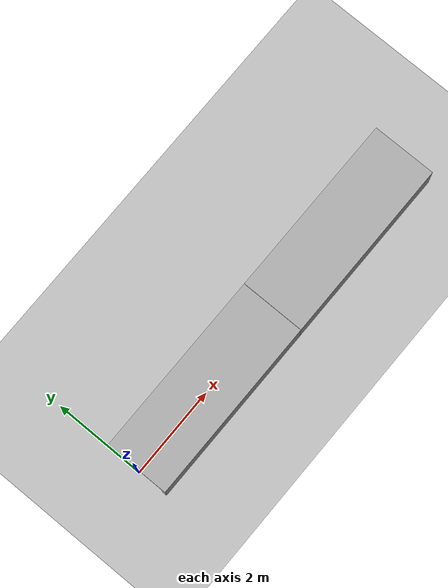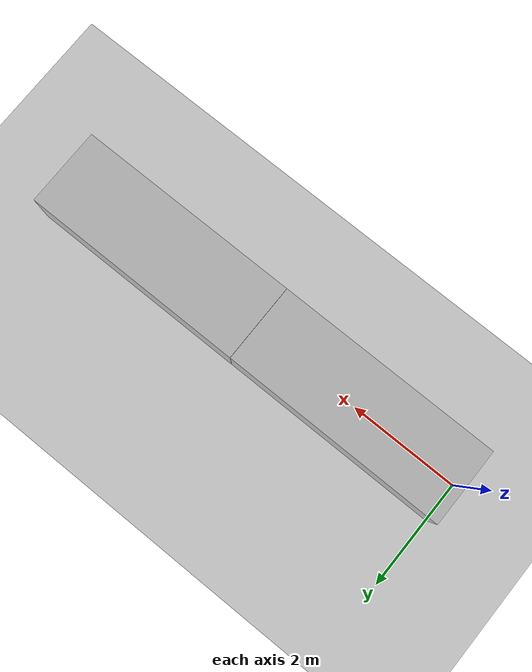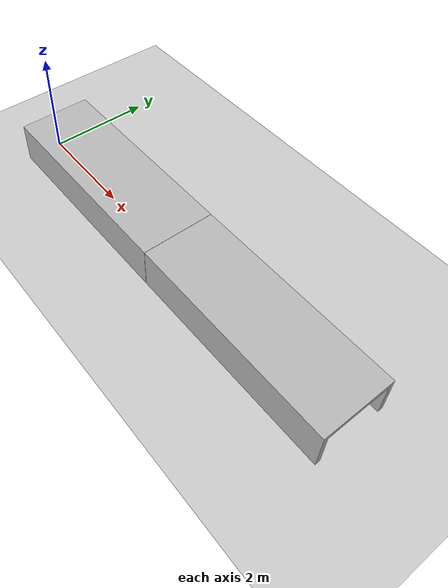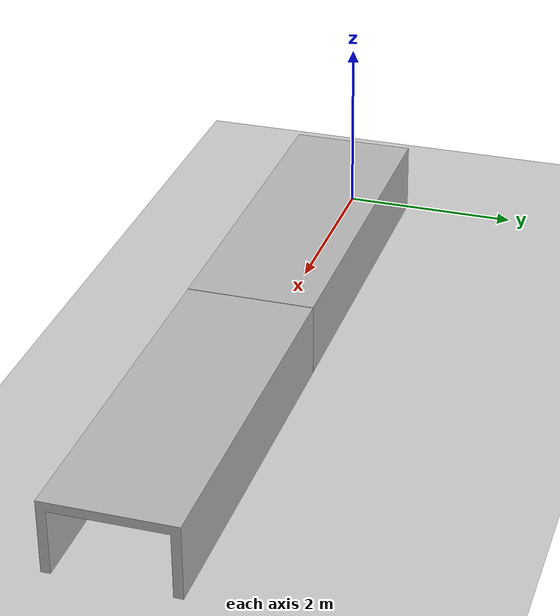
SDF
<sdf version="1.7">
 <world name="default">
  <light name="sun" type="directional">
   <pose>0 0 10 0 -0 0</pose>
   <diffuse>0.8 0.8 0.8 1</diffuse>
   <specular>0.2 0.2 0.2 1</specular>
   <attenuation>
    <range>1000</range>
    <constant>0.9</constant>
    <linear>0.01</linear>
    <quadratic>0.001</quadratic>
   </attenuation>
   <direction>-0.5 0.1 -0.9</direction>
   <spot><inner_angle>0</inner_angle><outer_angle>0</outer_angle><falloff>0</falloff></spot>
  </light>
  <model name="ground_plane">
   <static>1</static>
   <link name="link">
    <collision name="collision">
     <geometry><plane><normal>0 0 1</normal><size>100 100</size></plane></geometry>
     <surface>
      <contact><collide_bitmask>65535</collide_bitmask></contact>
      <friction><ode><mu>100</mu><mu2>50</mu2></ode></friction>
     </surface>
    </collision>
    <visual name="visual">
     <cast_shadows>0</cast_shadows>
     <geometry><plane><normal>0 0 1</normal><size>100 100</size></plane></geometry>
     <material>
      <script><uri>file://media/materials/scripts/gazebo.material</uri><name>Gazebo/Grey</name></script>
     </material>
    </visual>
   </link>
  </model>
  <gravity>0 0 -9.8</gravity>
  <magnetic_field>6e-06 2.3e-05 -4.2e-05</magnetic_field>
  <atmosphere type="adiabatic"/>
  <physics type="ode">
   <max_step_size>0.001</max_step_size>
   <real_time_factor>1</real_time_factor>
   <real_time_update_rate>1000</real_time_update_rate>
  </physics>
  <scene><ambient>0.4 0.4 0.4 1</ambient><background>0.7 0.7 0.7 1</background><shadows>1</shadows></scene>
  <audio><device>default</device></audio>
  <spherical_coordinates>
   <surface_model>EARTH_WGS84</surface_model>
   <latitude_deg>0</latitude_deg>
   <longitude_deg>0</longitude_deg>
   <elevation>0</elevation>
   <heading_deg>0</heading_deg>
  </spherical_coordinates>
  <model name="bigger_rough_3crack_2spall">
   <static>1</static>
   <link name="link">
    <collision name="collision">
     <geometry>
      <mesh>
       <scale>1 1 1</scale>
       <uri>model://bigger_rough_3crack_2spall/meshes/bigger_rough_3crack_2spall.dae</uri>
      </mesh>
     </geometry>
     <surface><friction><ode><mu>1.2</mu><mu2>1.2</mu2></ode></friction></surface>
    </collision>
    <visual name="visual">
     <geometry>
      <mesh>
       <scale>1 1 1</scale>
       <uri>model://bigger_rough_3crack_2spall/meshes/bigger_rough_3crack_2spall.dae</uri>
      </mesh>
     </geometry>
    </visual>
   </link>
   <pose>0.020782 0 0.202505 0 -0 0</pose>
  </model>
  <model name="bigger_rough_3crack_2spall_0">
   <static>0</static>
   <link name="link">
    <inertial>
     <mass>0.01</mass>
     <inertia><ixx>1</ixx><ixy>0</ixy><ixz>0</ixz><iyy>1</iyy><iyz>0</iyz><izz>1</izz></inertia>
    </inertial>
    <collision name="collision">
     <geometry>
      <mesh>
       <scale>1 1 1</scale>
       <uri>model://bigger_rough_3crack_2spall/meshes/bigger_rough_3crack_2spall.dae</uri>
      </mesh>
     </geometry>
    </collision>
    <visual name="visual">
     <geometry>
      <mesh>
       <scale>1 1 1</scale>
       <uri>model://bigger_rough_3crack_2spall/meshes/bigger_rough_3crack_2spall.dae</uri>
      </mesh>
     </geometry>
    </visual>
   </link>
   <pose>4.02754 0.000855 0.200889 0.000222 -0.004112 7.5e-05</pose>
  </model>
 </world>
</sdf>
